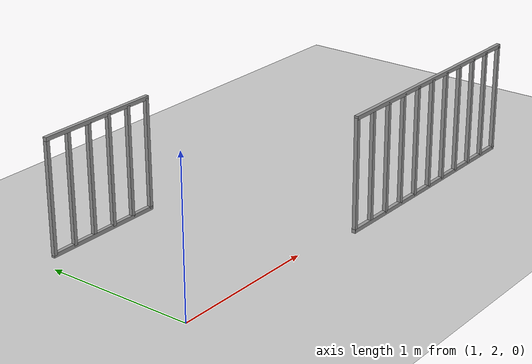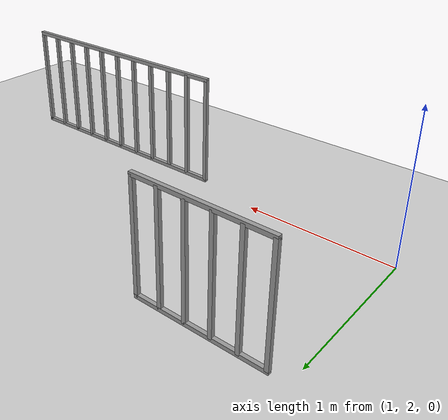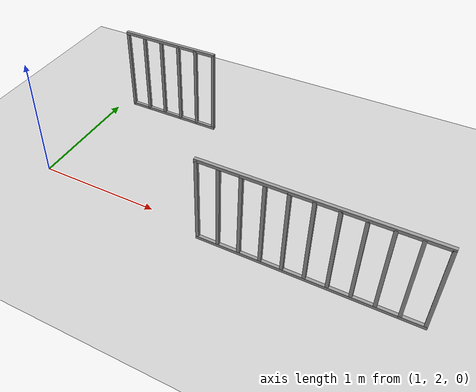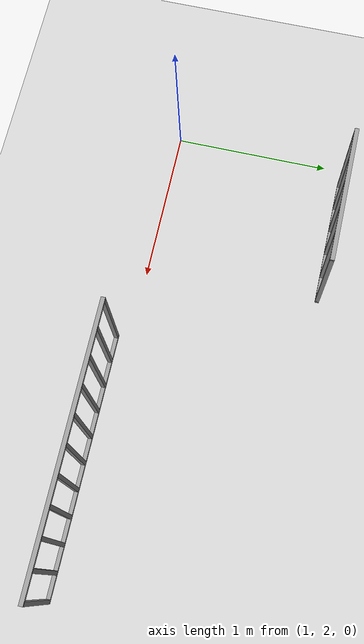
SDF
<sdf version="1.7">
 <world name="default">
  <light name="sun" type="directional">
   <pose>0 0 10 0 -0 0</pose>
   <diffuse>0.8 0.8 0.8 1</diffuse>
   <specular>0.2 0.2 0.2 1</specular>
   <attenuation>
    <range>1000</range>
    <constant>0.9</constant>
    <linear>0.01</linear>
    <quadratic>0.001</quadratic>
   </attenuation>
   <direction>-0.5 0.1 -0.9</direction>
   <spot><inner_angle>0</inner_angle><outer_angle>0</outer_angle><falloff>0</falloff></spot>
  </light>
  <model name="ground_plane">
   <static>1</static>
   <link name="link">
    <collision name="collision">
     <geometry><plane><normal>0 0 1</normal><size>100 100</size></plane></geometry>
     <surface>
      <contact><collide_bitmask>65535</collide_bitmask></contact>
      <friction><ode><mu>100</mu><mu2>50</mu2></ode></friction>
     </surface>
    </collision>
    <visual name="visual">
     <cast_shadows>0</cast_shadows>
     <geometry><plane><normal>0 0 1</normal><size>100 100</size></plane></geometry>
     <material>
      <script><uri>file://media/materials/scripts/gazebo.material</uri><name>Gazebo/Grey</name></script>
     </material>
    </visual>
   </link>
  </model>
  <gravity>0 0 -9.8</gravity>
  <magnetic_field>6e-06 2.3e-05 -4.2e-05</magnetic_field>
  <atmosphere type="adiabatic"/>
  <physics type="ode">
   <max_step_size>0.001</max_step_size>
   <real_time_factor>1</real_time_factor>
   <real_time_update_rate>1000</real_time_update_rate>
  </physics>
  <scene><ambient>0.4 0.4 0.4 1</ambient><background>0.7 0.7 0.7 1</background><shadows>1</shadows></scene>
  <audio><device>default</device></audio>
  <spherical_coordinates>
   <surface_model>EARTH_WGS84</surface_model>
   <latitude_deg>0</latitude_deg>
   <longitude_deg>0</longitude_deg>
   <elevation>0</elevation>
   <heading_deg>0</heading_deg>
  </spherical_coordinates>
  <model name="pet_gate">
   <static>1</static>
   <link name="link">
    <collision name="bar1_collision">
     <pose>0 0 0.381 0 -0 0</pose>
     <geometry><box><size>0.0254 0.0254 0.7366</size></box></geometry>
    </collision>
    <visual name="bar1_visual">
     <pose>0 0 0.381 0 -0 0</pose>
     <geometry><box><size>0.0254 0.0254 0.7366</size></box></geometry>
     <material>
      <script><uri>file://media/materials/scripts/gazebo.material</uri><name>Gazebo/Grey</name></script>
     </material>
    </visual>
    <collision name="bar2_collision">
     <pose>0.1651 0 0.381 0 -0 0</pose>
     <geometry><box><size>0.0254 0.0254 0.7366</size></box></geometry>
    </collision>
    <visual name="bar2_visual">
     <pose>0.1651 0 0.381 0 -0 0</pose>
     <geometry><box><size>0.0254 0.0254 0.7366</size></box></geometry>
     <material>
      <script><uri>file://media/materials/scripts/gazebo.material</uri><name>Gazebo/Grey</name></script>
     </material>
    </visual>
    <collision name="bar3_collision">
     <pose>0.3302 0 0.381 0 -0 0</pose>
     <geometry><box><size>0.0254 0.0254 0.7366</size></box></geometry>
    </collision>
    <visual name="bar3_visual">
     <pose>0.3302 0 0.381 0 -0 0</pose>
     <geometry><box><size>0.0254 0.0254 0.7366</size></box></geometry>
     <material>
      <script><uri>file://media/materials/scripts/gazebo.material</uri><name>Gazebo/Grey</name></script>
     </material>
    </visual>
    <collision name="bar4_collision">
     <pose>0.4953 0 0.381 0 -0 0</pose>
     <geometry><box><size>0.0254 0.0254 0.7366</size></box></geometry>
    </collision>
    <visual name="bar4_visual">
     <pose>0.4953 0 0.381 0 -0 0</pose>
     <geometry><box><size>0.0254 0.0254 0.7366</size></box></geometry>
     <material>
      <script><uri>file://media/materials/scripts/gazebo.material</uri><name>Gazebo/Grey</name></script>
     </material>
    </visual>
    <collision name="bar5_collision">
     <pose>0.6604 0 0.381 0 -0 0</pose>
     <geometry><box><size>0.0254 0.0254 0.7366</size></box></geometry>
    </collision>
    <visual name="bar5_visual">
     <pose>0.6604 0 0.381 0 -0 0</pose>
     <geometry><box><size>0.0254 0.0254 0.7366</size></box></geometry>
     <material>
      <script><uri>file://media/materials/scripts/gazebo.material</uri><name>Gazebo/Grey</name></script>
     </material>
    </visual>
    <collision name="bar6_collision">
     <pose>0.8255 0 0.381 0 -0 0</pose>
     <geometry><box><size>0.0254 0.0254 0.7366</size></box></geometry>
    </collision>
    <visual name="bar6_visual">
     <pose>0.8255 0 0.381 0 -0 0</pose>
     <geometry><box><size>0.0254 0.0254 0.7366</size></box></geometry>
     <material>
      <script><uri>file://media/materials/scripts/gazebo.material</uri><name>Gazebo/Grey</name></script>
     </material>
    </visual>
    <collision name="top_rail_collision">
     <pose>0.41275 0 0.7493 0 -0 0</pose>
     <geometry><box><size>0.8509 0.0254 0.0254</size></box></geometry>
    </collision>
    <visual name="top_rail_visual">
     <pose>0.41275 0 0.7493 0 -0 0</pose>
     <geometry><box><size>0.8509 0.0254 0.0254</size></box></geometry>
     <material>
      <script><uri>file://media/materials/scripts/gazebo.material</uri><name>Gazebo/Grey</name></script>
     </material>
    </visual>
    <collision name="bottom_rail_collision">
     <pose>0.41275 0 0.0127 0 -0 0</pose>
     <geometry><box><size>0.8509 0.0254 0.0254</size></box></geometry>
    </collision>
    <visual name="bottom_rail_visual">
     <pose>0.41275 0 0.0127 0 -0 0</pose>
     <geometry><box><size>0.8509 0.0254 0.0254</size></box></geometry>
     <material>
      <script><uri>file://media/materials/scripts/gazebo.material</uri><name>Gazebo/Grey</name></script>
     </material>
    </visual>
   </link>
   <pose>1.11529 3.1194 0 0 -0 0</pose>
  </model>
  <model name="pet_gate_wide">
   <static>1</static>
   <link name="link">
    <collision name="bar1_collision">
     <pose>0 0 0.381 0 -0 0</pose>
     <geometry><box><size>0.0254 0.0254 0.7366</size></box></geometry>
    </collision>
    <visual name="bar1_visual">
     <pose>0 0 0.381 0 -0 0</pose>
     <geometry><box><size>0.0254 0.0254 0.7366</size></box></geometry>
     <material>
      <script><uri>file://media/materials/scripts/gazebo.material</uri><name>Gazebo/Grey</name></script>
     </material>
    </visual>
    <collision name="bar2_collision">
     <pose>0.1651 0 0.381 0 -0 0</pose>
     <geometry><box><size>0.0254 0.0254 0.7366</size></box></geometry>
    </collision>
    <visual name="bar2_visual">
     <pose>0.1651 0 0.381 0 -0 0</pose>
     <geometry><box><size>0.0254 0.0254 0.7366</size></box></geometry>
     <material>
      <script><uri>file://media/materials/scripts/gazebo.material</uri><name>Gazebo/Grey</name></script>
     </material>
    </visual>
    <collision name="bar3_collision">
     <pose>0.3302 0 0.381 0 -0 0</pose>
     <geometry><box><size>0.0254 0.0254 0.7366</size></box></geometry>
    </collision>
    <visual name="bar3_visual">
     <pose>0.3302 0 0.381 0 -0 0</pose>
     <geometry><box><size>0.0254 0.0254 0.7366</size></box></geometry>
     <material>
      <script><uri>file://media/materials/scripts/gazebo.material</uri><name>Gazebo/Grey</name></script>
     </material>
    </visual>
    <collision name="bar4_collision">
     <pose>0.4953 0 0.381 0 -0 0</pose>
     <geometry><box><size>0.0254 0.0254 0.7366</size></box></geometry>
    </collision>
    <visual name="bar4_visual">
     <pose>0.4953 0 0.381 0 -0 0</pose>
     <geometry><box><size>0.0254 0.0254 0.7366</size></box></geometry>
     <material>
      <script><uri>file://media/materials/scripts/gazebo.material</uri><name>Gazebo/Grey</name></script>
     </material>
    </visual>
    <collision name="bar5_collision">
     <pose>0.6604 0 0.381 0 -0 0</pose>
     <geometry><box><size>0.0254 0.0254 0.7366</size></box></geometry>
    </collision>
    <visual name="bar5_visual">
     <pose>0.6604 0 0.381 0 -0 0</pose>
     <geometry><box><size>0.0254 0.0254 0.7366</size></box></geometry>
     <material>
      <script><uri>file://media/materials/scripts/gazebo.material</uri><name>Gazebo/Grey</name></script>
     </material>
    </visual>
    <collision name="bar6_collision">
     <pose>0.8255 0 0.381 0 -0 0</pose>
     <geometry><box><size>0.0254 0.0254 0.7366</size></box></geometry>
    </collision>
    <visual name="bar6_visual">
     <pose>0.8255 0 0.381 0 -0 0</pose>
     <geometry><box><size>0.0254 0.0254 0.7366</size></box></geometry>
     <material>
      <script><uri>file://media/materials/scripts/gazebo.material</uri><name>Gazebo/Grey</name></script>
     </material>
    </visual>
    <collision name="bar7_collision">
     <pose>0.9906 0 0.381 0 -0 0</pose>
     <geometry><box><size>0.0254 0.0254 0.7366</size></box></geometry>
    </collision>
    <visual name="bar7_visual">
     <pose>0.9906 0 0.381 0 -0 0</pose>
     <geometry><box><size>0.0254 0.0254 0.7366</size></box></geometry>
     <material>
      <script><uri>file://media/materials/scripts/gazebo.material</uri><name>Gazebo/Grey</name></script>
     </material>
    </visual>
    <collision name="bar8_collision">
     <pose>1.1557 0 0.381 0 -0 0</pose>
     <geometry><box><size>0.0254 0.0254 0.7366</size></box></geometry>
    </collision>
    <visual name="bar8_visual">
     <pose>1.1557 0 0.381 0 -0 0</pose>
     <geometry><box><size>0.0254 0.0254 0.7366</size></box></geometry>
     <material>
      <script><uri>file://media/materials/scripts/gazebo.material</uri><name>Gazebo/Grey</name></script>
     </material>
    </visual>
    <collision name="bar9_collision">
     <pose>1.3208 0 0.381 0 -0 0</pose>
     <geometry><box><size>0.0254 0.0254 0.7366</size></box></geometry>
    </collision>
    <visual name="bar9_visual">
     <pose>1.3208 0 0.381 0 -0 0</pose>
     <geometry><box><size>0.0254 0.0254 0.7366</size></box></geometry>
     <material>
      <script><uri>file://media/materials/scripts/gazebo.material</uri><name>Gazebo/Grey</name></script>
     </material>
    </visual>
    <collision name="bar10_collision">
     <pose>1.4859 0 0.381 0 -0 0</pose>
     <geometry><box><size>0.0254 0.0254 0.7366</size></box></geometry>
    </collision>
    <visual name="bar10_visual">
     <pose>1.4859 0 0.381 0 -0 0</pose>
     <geometry><box><size>0.0254 0.0254 0.7366</size></box></geometry>
     <material>
      <script><uri>file://media/materials/scripts/gazebo.material</uri><name>Gazebo/Grey</name></script>
     </material>
    </visual>
    <collision name="bar11_collision">
     <pose>1.651 0 0.381 0 -0 0</pose>
     <geometry><box><size>0.0254 0.0254 0.7366</size></box></geometry>
    </collision>
    <visual name="bar11_visual">
     <pose>1.651 0 0.381 0 -0 0</pose>
     <geometry><box><size>0.0254 0.0254 0.7366</size></box></geometry>
     <material>
      <script><uri>file://media/materials/scripts/gazebo.material</uri><name>Gazebo/Grey</name></script>
     </material>
    </visual>
    <collision name="top_rail_collision">
     <pose>0.8255 0 0.7493 0 -0 0</pose>
     <geometry><box><size>1.6764 0.0254 0.0254</size></box></geometry>
    </collision>
    <visual name="top_rail_visual">
     <pose>0.8255 0 0.7493 0 -0 0</pose>
     <geometry><box><size>1.6764 0.0254 0.0254</size></box></geometry>
     <material>
      <script><uri>file://media/materials/scripts/gazebo.material</uri><name>Gazebo/Grey</name></script>
     </material>
    </visual>
    <collision name="bottom_rail_collision">
     <pose>0.8255 0 0.0127 0 -0 0</pose>
     <geometry><box><size>1.6764 0.0254 0.0254</size></box></geometry>
    </collision>
    <visual name="bottom_rail_visual">
     <pose>0.8255 0 0.0127 0 -0 0</pose>
     <geometry><box><size>1.6764 0.0254 0.0254</size></box></geometry>
     <material>
      <script><uri>file://media/materials/scripts/gazebo.material</uri><name>Gazebo/Grey</name></script>
     </material>
    </visual>
   </link>
   <pose>2.45334 1.9123 0 0 -0 0</pose>
  </model>
 </world>
</sdf>
